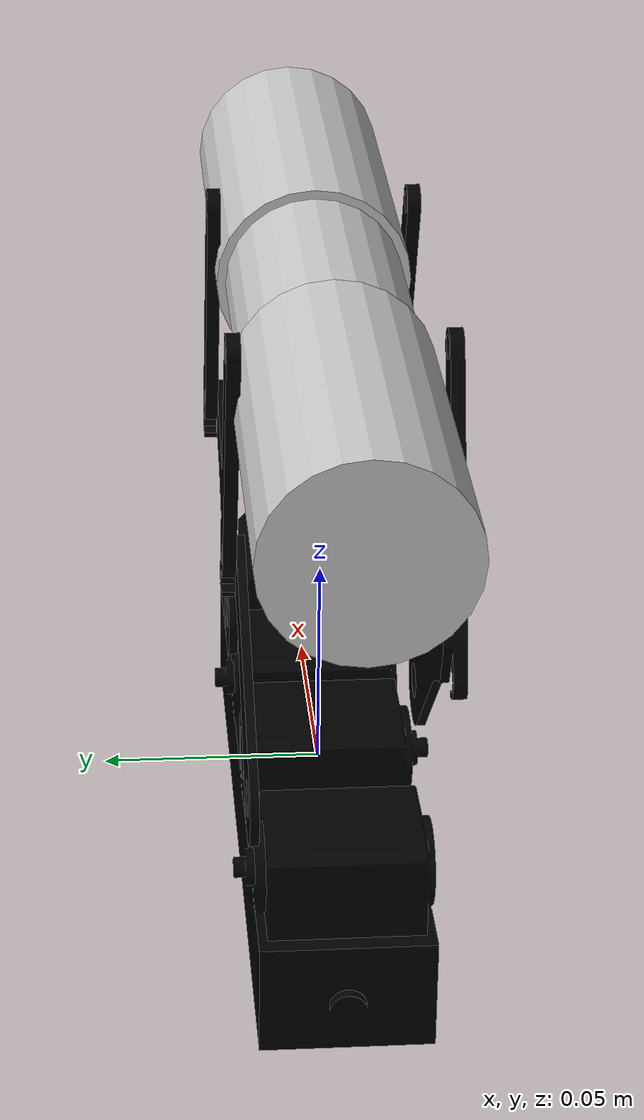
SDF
<?xml version="1.0"?>
<sdf version="1.7">
  <model name="leg">

    <!-- INCLUDE MOTORS-->
    <link name='motorsLink'>
      <pose>0 0 0 0 0 0</pose>
      <inertial>
        <mass>0.6</mass>
        <inertia>
          <ixx>0.032</ixx>
          <ixy>0</ixy>
          <ixz>0</ixz>
          <iyy>0.032</iyy>
          <iyz>0</iyz>
          <izz>0.00012</izz>
        </inertia>
      </inertial>
      <collision name='collision'>
        <geometry>
          <box>
            <size>0.166 0.038 0.0465</size>
          </box>
        </geometry>
      </collision>
      <visual name='visual'>
        <transparency>0</transparency>
        <pose relative_to='motorsLink'>0 0 0 0 0 0</pose>
        <geometry>
          <mesh>
            <scale> 0.001 0.001 0.001</scale>
            <uri>model://rm2_simple_leg_actuator/meshes/leg_motor.stl</uri>
          </mesh>
        </geometry>
          <material>
            <ambient>0.0 0.0 0 1</ambient>
            <diffuse>0.0 0.0 0 1</diffuse>
            <specular>0.0 0.0 0 1</specular>
          </material>
      </visual>
    </link>

    <!-- JOINT WORLD - MOTORS -->

    <!-- INCLUDE FRAMES -->
    <link name='framesLink'>
      <pose relative_to="j_m_f">0 0 0.03825 0 0 0</pose>
      <inertial>
        <mass>0.6</mass>
        <inertia>
          <ixx>0.192</ixx>
          <ixy>0</ixy>
          <ixz>0</ixz>
          <iyy>0.192</iyy>
          <iyz>0</iyz>
          <izz>0.00072</izz>
        </inertia>
      </inertial>
      <collision name='collision'>
        <geometry>
          <cylinder>
            <radius>0.005</radius>
            <length>0.1</length>
          </cylinder>
        </geometry>
      </collision>
      <visual name='visual'>
        <pose relative_to="motorsLink">0 0 0 0 0 0</pose>
        <transparency>0.1</transparency>
        <geometry>
          <mesh>
            <scale> 0.001 0.001 0.001</scale>
            <uri>model://rm2_simple_leg_actuator/meshes/leg_frames_corregido2.stl</uri>
          </mesh>
        </geometry>
          <material>
            <ambient>0.0 0.0 0 1</ambient>
            <diffuse>0.0 0.0 0 1</diffuse>
            <specular>0.0 0.0 0 1</specular>
          </material>
      </visual>
    </link>

    <!-- JOINT MOTORS - FRAMES -->
    <joint name="j_m_f" type="revolute">
      <pose relative_to="motorsLink">0 0 0.02325 0 0 0 </pose>
      <parent>motorsLink</parent>
      <child>framesLink</child>
      <axis>
        <xyz>0 1 0</xyz>
        <limit>
          <lower>-0.785398</lower>
          <upper>0.785398</upper>
        </limit>
      </axis>
    </joint>

    <!-- INCLUDE ACTUATOR BASE -->
    <link name="actuatorBaseLink">
      <pose relative_to="j_f_ab">0 0 0.0106 0 -1.5708 0</pose>
      <inertial>
        <mass>0.2</mass>
        <inertia>
          <ixx>0.064</ixx>
          <ixy>0</ixy>
          <ixz>0</ixz>
          <iyy>0.064</iyy>
          <iyz>0</iyz>
          <izz>0.00024</izz>
        </inertia>
      </inertial>
      <collision name='collision'>
        <geometry>
          <cylinder>
            <radius>0.020</radius>
            <length>0.050</length>
          </cylinder>
        </geometry>
      </collision>
      <visual name='visual'>
        <transparency>0.1</transparency>
        <geometry>
          <cylinder>
            <radius>0.020</radius>
            <length>0.050</length>
          </cylinder>
        </geometry>
          <material>
            <ambient>0.8 0.8 0.8 1</ambient>
            <diffuse>0.8 0.8 0.8 1</diffuse>
            <specular>0.8 0.8 0.8 1</specular>
          </material>
      </visual>
    </link>

    <!-- JOINT FRAMES - ACTUATOR BASE -->
    <joint name="j_f_ab" type="revolute">
      <pose relative_to="framesLink">0 0 0.03825 0 0 0 </pose>
      <parent>framesLink</parent>
      <child>actuatorBaseLink</child>
      <axis>
        <xyz>0 1 0</xyz>
        <limit>
          <lower>-0.785398</lower>
          <upper>0.785398</upper>
        </limit>
      </axis>
    </joint>

    <!-- INCLUDE FORWARD ACTUATOR -->
    <link name="forwardActuatorLink">
      <pose relative_to="j_ab_fa">0 0 -0.0415 0 0 0</pose>
      <inertial>
        <mass>0.2</mass>
        <inertia>
          <ixx>0.064</ixx>
          <ixy>0</ixy>
          <ixz>0</ixz>
          <iyy>0.064</iyy>
          <iyz>0</iyz>
          <izz>0.00024</izz>
        </inertia>
      </inertial>
      <collision name='collision'>
        <geometry>
          <cylinder>
            <radius>0.022</radius>
            <length>0.083</length>
          </cylinder>
        </geometry>
      </collision>
      <visual name='visual'>
        <transparency>0.1</transparency>
        <geometry>
          <cylinder>
            <radius>0.022</radius>
            <length>0.083</length>
          </cylinder>
        </geometry>
          <material>
            <ambient>0.8 0.8 0.8 1</ambient>
            <diffuse>0.8 0.8 0.8 1</diffuse>
            <specular>0.8 0.8 0.8 1</specular>
          </material>
      </visual>
    </link>

    <!-- JOINT ACTUATOR BASE - FORWARD ACTUATOR -->
    <joint name="j_ab_fa" type="revolute">
      <pose relative_to="actuatorBaseLink">0 0 -0.025 0 0 0 </pose>
      <parent>actuatorBaseLink</parent>
      <child>forwardActuatorLink</child>
      <axis>
        <xyz>0 0 1</xyz>
      </axis>
    </joint>

    <!-- INCLUDE BACKWARD ACTUATOR -->
    <link name="backwardActuatorLink">
      <pose relative_to="j_ab_ba">0 0 0.0415 0 0 0</pose>
      <inertial>
        <mass>0.2</mass>
        <inertia>
          <ixx>0.064</ixx>
          <ixy>0</ixy>
          <ixz>0</ixz>
          <iyy>0.064</iyy>
          <iyz>0</iyz>
          <izz>0.00024</izz>
        </inertia>
      </inertial>
      <collision name='collision'>
        <geometry>
          <cylinder>
            <radius>0.022</radius>
            <length>0.083</length>
          </cylinder>
        </geometry>
      </collision>
      <visual name='visual'>
        <transparency>0.1</transparency>
        <geometry>
          <cylinder>
            <radius>0.022</radius>
            <length>0.083</length>
          </cylinder>
        </geometry>
          <material>
            <ambient>0.8 0.8 0.8 1</ambient>
            <diffuse>0.8 0.8 0.8 1</diffuse>
            <specular>0.8 0.8 0.8 1</specular>
          </material>
      </visual>
    </link>

    <!-- JOINT ACTUATOR BASE - BACKWARD ACTUATOR -->
    <joint name="j_ab_ba" type="revolute">
      <pose relative_to="actuatorBaseLink">0 0 0.025 0 0 0 </pose>
      <parent>actuatorBaseLink</parent>
      <child>backwardActuatorLink</child>
      <axis>
        <xyz>0 0 1</xyz>
      </axis>
    </joint>

    <!--ign topic -t "/j_w_m_cmd" -m ignition.msgs.Double -p "data: 0.0"-->

    <!--ign topic -t "/j_m_f_cmd" -m ignition.msgs.Double -p "data: 0.0"-->

    <!--ign topic -t "/j_f_a_cmd" -m ignition.msgs.Double -p "data: 0.0"-->

    <!-- TERMINAR-->

  </model>
</sdf>
